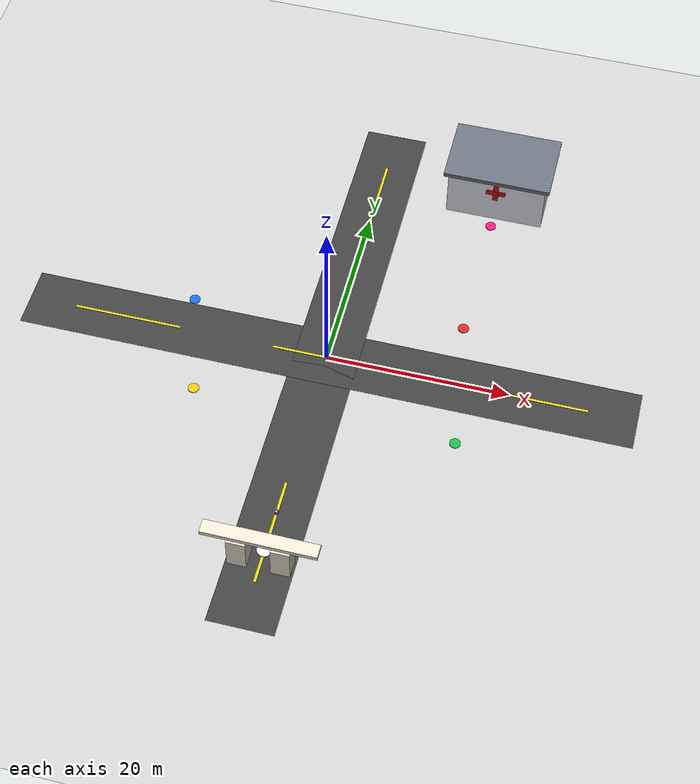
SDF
<sdf version="1.7">
 <world name="campus_world">
  <physics type="ode">
   <real_time_update_rate>1000</real_time_update_rate>
   <max_step_size>0.001</max_step_size>
   <real_time_factor>1</real_time_factor>
  </physics>
  <plugin name="gazebo_ros_state" filename="libgazebo_ros_state.so"/>
  <light name="sun" type="directional">
   <pose>0 0 10 0 -0 0</pose>
   <diffuse>0.8 0.8 0.8 1</diffuse>
   <specular>0.2 0.2 0.2 1</specular>
   <attenuation>
    <range>1000</range>
    <constant>0.9</constant>
    <linear>0.01</linear>
    <quadratic>0.001</quadratic>
   </attenuation>
   <direction>-0.5 0.1 -0.9</direction>
   <spot><inner_angle>0</inner_angle><outer_angle>0</outer_angle><falloff>0</falloff></spot>
  </light>
  <model name="ground_plane">
   <static>1</static>
   <link name="link">
    <collision name="collision">
     <geometry><plane><normal>0 0 1</normal><size>100 100</size></plane></geometry>
     <surface>
      <friction><ode><mu>0.5</mu><mu2>0.5</mu2></ode></friction>
      <contact><ode><kp>1e+06</kp><kd>100</kd></ode></contact>
     </surface>
    </collision>
    <visual name="visual">
     <cast_shadows>0</cast_shadows>
     <geometry><plane><normal>0 0 1</normal><size>100 100</size></plane></geometry>
     <material>
      <script><uri>file://media/materials/scripts/gazebo.material</uri><name>Gazebo/Grey</name></script>
     </material>
    </visual>
   </link>
  </model>
  <model name="road_ew">
   <static>1</static>
   <pose>0 0 0.002 0 -0 0</pose>
   <link name="link">
    <collision name="col">
     <geometry><box><size>67.5 7 0.004</size></box></geometry>
     <surface><friction><ode><mu>1</mu><mu2>1</mu2></ode></friction></surface>
    </collision>
    <visual name="vis">
     <geometry><box><size>67.5 7 0.004</size></box></geometry>
     <material><ambient>0.25 0.25 0.25 1</ambient><diffuse>0.25 0.25 0.25 1</diffuse></material>
    </visual>
   </link>
  </model>
  <model name="road_ns">
   <static>1</static>
   <pose>0 0 0.002 0 -0 0</pose>
   <link name="link">
    <collision name="col">
     <geometry><box><size>7 67.5 0.004</size></box></geometry>
     <surface><friction><ode><mu>1</mu><mu2>1</mu2></ode></friction></surface>
    </collision>
    <visual name="vis">
     <geometry><box><size>7 67.5 0.004</size></box></geometry>
     <material><ambient>0.25 0.25 0.25 1</ambient><diffuse>0.25 0.25 0.25 1</diffuse></material>
    </visual>
   </link>
  </model>
  <model name="dash_ew_1">
   <static>1</static>
   <pose>-22.5 0 0.02 0 -0 0</pose>
   <link name="link">
    <visual name="v">
     <geometry><box><size>12 0.3 0.01</size></box></geometry>
     <material><ambient>0.9 0.8 0.1 1</ambient></material>
    </visual>
   </link>
  </model>
  <model name="dash_ew_2">
   <static>1</static>
   <pose>0 0 0.02 0 -0 0</pose>
   <link name="link">
    <visual name="v">
     <geometry><box><size>12 0.3 0.01</size></box></geometry>
     <material><ambient>0.9 0.8 0.1 1</ambient></material>
    </visual>
   </link>
  </model>
  <model name="dash_ew_3">
   <static>1</static>
   <pose>22.5 0 0.02 0 -0 0</pose>
   <link name="link">
    <visual name="v">
     <geometry><box><size>12 0.3 0.01</size></box></geometry>
     <material><ambient>0.9 0.8 0.1 1</ambient></material>
    </visual>
   </link>
  </model>
  <model name="dash_ns_1">
   <static>1</static>
   <pose>0 -22.5 0.02 0 -0 1.5708</pose>
   <link name="link">
    <visual name="v">
     <geometry><box><size>12 0.3 0.01</size></box></geometry>
     <material><ambient>0.9 0.8 0.1 1</ambient></material>
    </visual>
   </link>
  </model>
  <model name="dash_ns_2">
   <static>1</static>
   <pose>0 22.5 0.02 0 -0 1.5708</pose>
   <link name="link">
    <visual name="v">
     <geometry><box><size>12 0.3 0.01</size></box></geometry>
     <material><ambient>0.9 0.8 0.1 1</ambient></material>
    </visual>
   </link>
  </model>
  <model name="medical_center">
   <static>1</static>
   <link name="link">
    <collision name="main">
     <pose>0 0 3 0 -0 0</pose>
     <geometry><box><size>11 7 6</size></box></geometry>
    </collision>
    <collision name="roof">
     <pose>0 0 6.25 0 -0 0</pose>
     <geometry><box><size>12 8 0.5</size></box></geometry>
    </collision>
    <visual name="visual_body">
     <pose>0 0 3 0 -0 0</pose>
     <geometry><box><size>11 7 6</size></box></geometry>
     <material>
      <ambient>0.92 0.93 0.95 1</ambient>
      <diffuse>0.92 0.93 0.95 1</diffuse>
      <specular>0.2 0.2 0.2 1</specular>
     </material>
    </visual>
    <visual name="visual_roof">
     <pose>0 0 6.25 0 -0 0</pose>
     <geometry><box><size>12 8 0.5</size></box></geometry>
     <material>
      <ambient>0.42 0.45 0.5 1</ambient>
      <diffuse>0.42 0.45 0.5 1</diffuse>
      <specular>0.1 0.1 0.1 1</specular>
     </material>
    </visual>
    <visual name="visual_cross_vertical">
     <pose>0 3.55 4.3 0 -0 0</pose>
     <geometry><box><size>0.6 0.15 2.2</size></box></geometry>
     <material>
      <ambient>0.82 0.08 0.1 1</ambient>
      <diffuse>0.82 0.08 0.1 1</diffuse>
      <specular>0.1 0.1 0.1 1</specular>
     </material>
    </visual>
    <visual name="visual_cross_horizontal">
     <pose>0 3.55 4.3 0 -0 0</pose>
     <geometry><box><size>2.2 0.15 0.6</size></box></geometry>
     <material>
      <ambient>0.82 0.08 0.1 1</ambient>
      <diffuse>0.82 0.08 0.1 1</diffuse>
      <specular>0.1 0.1 0.1 1</specular>
     </material>
    </visual>
   </link>
   <pose>13.5 27.5 0 0 0 -3.14159</pose>
  </model>
  <model name="gate_pillar_L">
   <static>1</static>
   <pose>-2.25 -26.1 2 0 -0 0</pose>
   <link name="link">
    <collision name="col"><geometry><box><size>2 2 4</size></box></geometry></collision>
    <visual name="vis">
     <geometry><box><size>2 2 4</size></box></geometry>
     <material><ambient>0.92 0.89 0.82 1</ambient><diffuse>0.92 0.89 0.82 1</diffuse></material>
    </visual>
   </link>
  </model>
  <model name="gate_pillar_R">
   <static>1</static>
   <pose>2.25 -26.1 2 0 -0 0</pose>
   <link name="link">
    <collision name="col"><geometry><box><size>2 2 4</size></box></geometry></collision>
    <visual name="vis">
     <geometry><box><size>2 2 4</size></box></geometry>
     <material><ambient>0.92 0.89 0.82 1</ambient><diffuse>0.92 0.89 0.82 1</diffuse></material>
    </visual>
   </link>
  </model>
  <model name="gate_arch">
   <static>1</static>
   <pose>0 -26.1 4.25 0 -0 0</pose>
   <link name="link">
    <collision name="col"><geometry><box><size>12 1.5 0.5</size></box></geometry></collision>
    <visual name="vis">
     <geometry><box><size>12 1.5 0.5</size></box></geometry>
     <material><ambient>0.92 0.89 0.82 1</ambient><diffuse>0.92 0.89 0.82 1</diffuse></material>
    </visual>
   </link>
  </model>
  <model name="wp_library">
   <static>1</static>
   <pose>-16.0594 4.08925 0.05 0 -0 0</pose>
   <link name="link">
    <visual name="v">
     <geometry><cylinder><radius>0.6</radius><length>0.1</length></cylinder></geometry>
     <material><ambient>0.1 0.4 0.9 1</ambient><diffuse>0.1 0.4 0.9 1</diffuse></material>
    </visual>
   </link>
  </model>
  <model name="wp_admin">
   <static>1</static>
   <pose>13.5 7.5 0.05 0 -0 0</pose>
   <link name="link">
    <visual name="v">
     <geometry><cylinder><radius>0.6</radius><length>0.1</length></cylinder></geometry>
     <material><ambient>0.85 0.15 0.15 1</ambient><diffuse>0.85 0.15 0.15 1</diffuse></material>
    </visual>
   </link>
  </model>
  <model name="wp_canteen">
   <static>1</static>
   <pose>-12.69 -7.5 0.05 0 -0 0</pose>
   <link name="link">
    <visual name="v">
     <geometry><cylinder><radius>0.6</radius><length>0.1</length></cylinder></geometry>
     <material><ambient>0.9 0.75 0.05 1</ambient><diffuse>0.9 0.75 0.05 1</diffuse></material>
    </visual>
   </link>
  </model>
  <model name="wp_hostel">
   <static>1</static>
   <pose>15.74 -7.5 0.05 0 -0 0</pose>
   <link name="link">
    <visual name="v">
     <geometry><cylinder><radius>0.6</radius><length>0.1</length></cylinder></geometry>
     <material><ambient>0.1 0.7 0.3 1</ambient><diffuse>0.1 0.7 0.3 1</diffuse></material>
    </visual>
   </link>
  </model>
  <model name="wp_medical">
   <static>1</static>
   <pose>13.5 22.7 0.05 0 -0 0</pose>
   <link name="link">
    <visual name="v">
     <geometry><cylinder><radius>0.6</radius><length>0.1</length></cylinder></geometry>
     <material><ambient>0.9 0.1 0.5 1</ambient><diffuse>0.9 0.1 0.5 1</diffuse></material>
    </visual>
   </link>
  </model>
  <model name="wp_gate">
   <static>1</static>
   <pose>0 -24.75 0.05 0 -0 0</pose>
   <link name="link">
    <visual name="v">
     <geometry><cylinder><radius>0.8</radius><length>0.1</length></cylinder></geometry>
     <material><ambient>1 1 1 1</ambient><diffuse>1 1 1 1</diffuse></material>
    </visual>
   </link>
  </model>
  <gravity>0 0 -9.8</gravity>
  <magnetic_field>6e-06 2.3e-05 -4.2e-05</magnetic_field>
  <atmosphere type="adiabatic"/>
  <scene><ambient>0.4 0.4 0.4 1</ambient><background>0.7 0.7 0.7 1</background><shadows>1</shadows></scene>
  <audio><device>default</device></audio>
  <spherical_coordinates>
   <surface_model>EARTH_WGS84</surface_model>
   <latitude_deg>0</latitude_deg>
   <longitude_deg>0</longitude_deg>
   <elevation>0</elevation>
   <heading_deg>0</heading_deg>
  </spherical_coordinates>
  <model name="campus_robot">
   <link name="base_link">
    <inertial>
     <pose>0.015787 -0 0.087938 0 -0 0</pose>
     <mass>22.55</mass>
     <inertia>
      <ixx>0.434777</ixx>
      <ixy>-2.44227e-19</ixy>
      <ixz>0.000920898</ixz>
      <iyy>1.49043</iyy>
      <iyz>-1.52548e-19</iyz>
      <izz>0.67733</izz>
     </inertia>
    </inertial>
    <collision name="base_link_collision">
     <pose>0 0 0.07 0 -0 0</pose>
     <geometry><box><size>0.45 0.25 0.1</size></box></geometry>
     <surface><friction><ode><mu>1</mu><mu2>1</mu2></ode></friction></surface>
    </collision>
    <collision name="base_link_fixed_joint_lump__battery_pack_collision_1">
     <pose>0.1 0 0.045 0 -0 0</pose>
     <geometry><box><size>0.18 0.28 0.05</size></box></geometry>
    </collision>
    <collision name="base_link_fixed_joint_lump__caster_front_left_collision_2">
     <pose>0.22 0.1 0.06 0 -0 0</pose>
     <geometry><sphere><radius>0.05</radius></sphere></geometry>
     <surface>
      <contact><ode><kp>1e+06</kp><kd>100</kd></ode></contact>
      <friction><ode><mu>0.01</mu><mu2>0.01</mu2></ode></friction>
     </surface>
    </collision>
    <collision name="base_link_fixed_joint_lump__caster_front_right_collision_3">
     <pose>0.22 -0.1 0.06 0 -0 0</pose>
     <geometry><sphere><radius>0.05</radius></sphere></geometry>
     <surface>
      <contact><ode><kp>1e+06</kp><kd>100</kd></ode></contact>
      <friction><ode><mu>0.01</mu><mu2>0.01</mu2></ode></friction>
     </surface>
    </collision>
    <collision name="base_link_fixed_joint_lump__caster_wheel_left_collision_4">
     <pose>-0.2 0.1 0.06 0 -0 0</pose>
     <geometry><sphere><radius>0.05</radius></sphere></geometry>
     <surface>
      <contact><ode><kp>1e+06</kp><kd>100</kd></ode></contact>
      <friction><ode><mu>0.01</mu><mu2>0.01</mu2></ode></friction>
     </surface>
    </collision>
    <collision name="base_link_fixed_joint_lump__caster_wheel_right_collision_5">
     <pose>-0.2 -0.1 0.06 0 -0 0</pose>
     <geometry><sphere><radius>0.05</radius></sphere></geometry>
     <surface>
      <contact><ode><kp>1e+06</kp><kd>100</kd></ode></contact>
      <friction><ode><mu>0.01</mu><mu2>0.01</mu2></ode></friction>
     </surface>
    </collision>
    <collision name="base_link_fixed_joint_lump__lidar_post_fl_collision_6">
     <pose>0.2 0.07 0.225 0 -0 0</pose>
     <geometry><box><size>0.015 0.015 0.33</size></box></geometry>
    </collision>
    <collision name="base_link_fixed_joint_lump__lidar_post_fr_collision_7">
     <pose>0.2 -0.07 0.225 0 -0 0</pose>
     <geometry><box><size>0.015 0.015 0.33</size></box></geometry>
    </collision>
    <collision name="base_link_fixed_joint_lump__lidar_post_rl_collision_8">
     <pose>-0.17 0.07 0.225 0 -0 0</pose>
     <geometry><box><size>0.015 0.015 0.33</size></box></geometry>
    </collision>
    <collision name="base_link_fixed_joint_lump__lidar_post_rr_collision_9">
     <pose>-0.17 -0.07 0.225 0 -0 0</pose>
     <geometry><box><size>0.015 0.015 0.33</size></box></geometry>
    </collision>
    <collision name="base_link_fixed_joint_lump__lidar_top_plate_collision_10">
     <pose>0.14 0 0.395 0 -0 0</pose>
     <geometry><box><size>0.16 0.16 0.01</size></box></geometry>
    </collision>
    <collision name="base_link_fixed_joint_lump__parcel_box_collision_11">
     <pose>0 0 0.3 0 -0 0</pose>
     <geometry><box><size>0.3 0.25 0.12</size></box></geometry>
    </collision>
    <collision name="base_link_fixed_joint_lump__rear_support_rod_collision_12">
     <pose>-0.14 0 0.19 0 -0 0</pose>
     <geometry><box><size>0.05 0.05 0.14</size></box></geometry>
    </collision>
    <collision name="base_link_fixed_joint_lump__sensor_tower_collision_13">
     <pose>0.14 0 0.19 0 -0 0</pose>
     <geometry><box><size>0.05 0.05 0.14</size></box></geometry>
    </collision>
    <collision name="base_link_fixed_joint_lump__lidar_link_collision_14">
     <pose>0.14 0 0.42 0 -0.035 0</pose>
     <geometry><box><size>0.001 0.001 0.001</size></box></geometry>
    </collision>
    <visual name="base_link_visual">
     <pose>0 0 0.06 0 -0 0</pose>
     <geometry><box><size>0.45 0.35 0.12</size></box></geometry>
     <material>
      <script><name>Gazebo/Blue</name><uri>file://media/materials/scripts/gazebo.material</uri></script>
     </material>
    </visual>
    <visual name="base_link_fixed_joint_lump__battery_pack_visual_1">
     <pose>0.1 0 0.045 0 -0 0</pose>
     <geometry><box><size>0.18 0.28 0.05</size></box></geometry>
    </visual>
    <visual name="base_link_fixed_joint_lump__caster_front_left_visual_2">
     <pose>0.22 0.1 0.06 0 -0 0</pose>
     <geometry><sphere><radius>0.05</radius></sphere></geometry>
     <material>
      <script><name>Gazebo/Grey</name><uri>file://media/materials/scripts/gazebo.material</uri></script>
     </material>
    </visual>
    <visual name="base_link_fixed_joint_lump__caster_front_right_visual_3">
     <pose>0.22 -0.1 0.06 0 -0 0</pose>
     <geometry><sphere><radius>0.05</radius></sphere></geometry>
     <material>
      <script><name>Gazebo/Grey</name><uri>file://media/materials/scripts/gazebo.material</uri></script>
     </material>
    </visual>
    <visual name="base_link_fixed_joint_lump__caster_wheel_left_visual_4">
     <pose>-0.2 0.1 0.06 0 -0 0</pose>
     <geometry><sphere><radius>0.05</radius></sphere></geometry>
     <material>
      <script><name>Gazebo/Grey</name><uri>file://media/materials/scripts/gazebo.material</uri></script>
     </material>
    </visual>
    <visual name="base_link_fixed_joint_lump__caster_wheel_right_visual_5">
     <pose>-0.2 -0.1 0.06 0 -0 0</pose>
     <geometry><sphere><radius>0.05</radius></sphere></geometry>
     <material>
      <script><name>Gazebo/Grey</name><uri>file://media/materials/scripts/gazebo.material</uri></script>
     </material>
    </visual>
    <visual name="base_link_fixed_joint_lump__imu_link_visual_6">
     <pose>0 0 0.09 0 -0 0</pose>
     <geometry><box><size>0.02 0.02 0.01</size></box></geometry>
    </visual>
    <visual name="base_link_fixed_joint_lump__lidar_post_fl_visual_7">
     <pose>0.2 0.07 0.225 0 -0 0</pose>
     <geometry><box><size>0.015 0.015 0.33</size></box></geometry>
    </visual>
    <visual name="base_link_fixed_joint_lump__lidar_post_fr_visual_8">
     <pose>0.2 -0.07 0.225 0 -0 0</pose>
     <geometry><box><size>0.015 0.015 0.33</size></box></geometry>
    </visual>
    <visual name="base_link_fixed_joint_lump__lidar_post_rl_visual_9">
     <pose>-0.17 0.07 0.225 0 -0 0</pose>
     <geometry><box><size>0.015 0.015 0.33</size></box></geometry>
    </visual>
    <visual name="base_link_fixed_joint_lump__lidar_post_rr_visual_10">
     <pose>-0.17 -0.07 0.225 0 -0 0</pose>
     <geometry><box><size>0.015 0.015 0.33</size></box></geometry>
    </visual>
    <visual name="base_link_fixed_joint_lump__lidar_top_plate_visual_11">
     <pose>0.14 0 0.395 0 -0 0</pose>
     <geometry><box><size>0.16 0.16 0.01</size></box></geometry>
    </visual>
    <visual name="base_link_fixed_joint_lump__parcel_box_visual_12">
     <pose>0 0 0.3 0 -0 0</pose>
     <geometry><box><size>0.3 0.25 0.12</size></box></geometry>
    </visual>
    <visual name="base_link_fixed_joint_lump__rear_support_rod_visual_13">
     <pose>-0.14 0 0.19 0 -0 0</pose>
     <geometry><box><size>0.05 0.05 0.14</size></box></geometry>
    </visual>
    <visual name="base_link_fixed_joint_lump__sensor_tower_visual_14">
     <pose>0.14 0 0.19 0 -0 0</pose>
     <geometry><box><size>0.05 0.05 0.14</size></box></geometry>
    </visual>
    <visual name="base_link_fixed_joint_lump__camera_mount_visual_15">
     <pose>0.18 0 0.15 0 -0 0</pose>
     <geometry><box><size>0.03 0.03 0.05</size></box></geometry>
    </visual>
    <visual name="base_link_fixed_joint_lump__camera_link_visual_16">
     <pose>0.22 0 0.15 0 -0.25 0</pose>
     <geometry><box><size>0.05 0.04 0.04</size></box></geometry>
    </visual>
    <visual name="base_link_fixed_joint_lump__lidar_base_link_visual_17">
     <pose>0.14 0 0.39 0 -0 0</pose>
     <geometry><cylinder><length>0.02</length><radius>0.045</radius></cylinder></geometry>
    </visual>
    <visual name="base_link_fixed_joint_lump__lidar_link_visual_18">
     <pose>0.14 0 0.42 0 -0.035 0</pose>
     <geometry><cylinder><length>0.04</length><radius>0.04</radius></cylinder></geometry>
    </visual>
    <sensor name="imu_sensor" type="imu">
     <always_on>1</always_on>
     <update_rate>100</update_rate>
     <visualize>0</visualize>
     <plugin name="imu_plugin" filename="libgazebo_ros_imu_sensor.so">
      <ros><remapping>~/out:=imu</remapping></ros>
      <frame_name>imu_link</frame_name>
     </plugin>
     <pose>0 0 0.09 0 -0 0</pose>
    </sensor>
    <sensor name="camera_sensor" type="depth">
     <always_on>1</always_on>
     <update_rate>30</update_rate>
     <visualize>1</visualize>
     <camera>
      <horizontal_fov>1.396</horizontal_fov>
      <image><width>640</width><height>480</height><format>R8G8B8</format></image>
      <clip><near>0.05</near><far>50</far></clip>
      <depth_camera><clip><near>0.1</near><far>10</far></clip><output>depths</output></depth_camera>
     </camera>
     <plugin name="camera_plugin" filename="libgazebo_ros_camera.so">
      <camera_name>camera_link</camera_name>
      <frame_name>camera_link_optical</frame_name>
      <min_depth>0.1</min_depth>
      <max_depth>10.0</max_depth>
     </plugin>
     <pose>0.22 0 0.15 0 -0.25 0</pose>
    </sensor>
    <sensor name="lidar" type="ray">
     <always_on>1</always_on>
     <update_rate>15</update_rate>
     <visualize>1</visualize>
     <ray>
      <scan>
       <horizontal>
        <samples>1080</samples>
        <resolution>1</resolution>
        <min_angle>-3.14159</min_angle>
        <max_angle>3.14159</max_angle>
       </horizontal>
       <vertical><samples>1</samples><min_angle>0</min_angle><max_angle>0</max_angle></vertical>
      </scan>
      <range><min>0.25</min><max>20</max><resolution>0.005</resolution></range>
      <noise><type>gaussian</type><mean>0</mean><stddev>0.01</stddev></noise>
     </ray>
     <plugin name="lidar_plugin" filename="libgazebo_ros_ray_sensor.so">
      <ros><remapping>~/out:=scan</remapping></ros>
      <output_type>sensor_msgs/LaserScan</output_type>
      <frame_name>lidar_link</frame_name>
     </plugin>
     <pose>0.14 0 0.42 0 -0.035 0</pose>
    </sensor>
   </link>
   <joint name="left_wheel_joint" type="revolute">
    <pose relative_to="base_link">0 0.195 0.075 0 -0 0</pose>
    <parent>base_link</parent>
    <child>left_wheel</child>
    <axis>
     <xyz>0 1 0</xyz>
     <limit><lower>-1e+16</lower><upper>1e+16</upper></limit>
     <dynamics><spring_reference>0</spring_reference><spring_stiffness>0</spring_stiffness></dynamics>
    </axis>
   </joint>
   <link name="left_wheel">
    <pose relative_to="left_wheel_joint">0 0 0 0 -0 0</pose>
    <inertial>
     <mass>0.5</mass>
     <inertia><ixx>0.001</ixx><ixy>0</ixy><ixz>0</ixz><iyy>0.001</iyy><iyz>0</iyz><izz>0.001</izz></inertia>
    </inertial>
    <collision name="left_wheel_collision">
     <pose>0 0 0 1.5708 -0 0</pose>
     <geometry><cylinder><length>0.04</length><radius>0.07</radius></cylinder></geometry>
     <surface>
      <contact><ode><kp>1e+06</kp><kd>100</kd></ode></contact>
      <friction><ode><mu>20</mu><mu2>20</mu2></ode></friction>
     </surface>
    </collision>
    <visual name="left_wheel_visual">
     <pose>0 0 0 1.5708 -0 0</pose>
     <geometry><cylinder><length>0.04</length><radius>0.07</radius></cylinder></geometry>
    </visual>
   </link>
   <joint name="right_wheel_joint" type="revolute">
    <pose relative_to="base_link">0 -0.195 0.075 0 -0 0</pose>
    <parent>base_link</parent>
    <child>right_wheel</child>
    <axis>
     <xyz>0 1 0</xyz>
     <limit><lower>-1e+16</lower><upper>1e+16</upper></limit>
     <dynamics><spring_reference>0</spring_reference><spring_stiffness>0</spring_stiffness></dynamics>
    </axis>
   </joint>
   <link name="right_wheel">
    <pose relative_to="right_wheel_joint">0 0 0 0 -0 0</pose>
    <inertial>
     <mass>0.5</mass>
     <inertia><ixx>0.001</ixx><ixy>0</ixy><ixz>0</ixz><iyy>0.001</iyy><iyz>0</iyz><izz>0.001</izz></inertia>
    </inertial>
    <collision name="right_wheel_collision">
     <pose>0 0 0 1.5708 -0 0</pose>
     <geometry><cylinder><length>0.04</length><radius>0.07</radius></cylinder></geometry>
     <surface>
      <contact><ode><kp>1e+06</kp><kd>100</kd></ode></contact>
      <friction><ode><mu>20</mu><mu2>20</mu2></ode></friction>
     </surface>
    </collision>
    <visual name="right_wheel_visual">
     <pose>0 0 0 1.5708 -0 0</pose>
     <geometry><cylinder><length>0.04</length><radius>0.07</radius></cylinder></geometry>
    </visual>
   </link>
   <static>0</static>
   <plugin name="diff_drive_controller" filename="libgazebo_ros_diff_drive.so">
    <ros><namespace>/</namespace></ros>
    <update_rate>100</update_rate>
    <left_joint>left_wheel_joint</left_joint>
    <right_joint>right_wheel_joint</right_joint>
    <wheel_separation>0.39</wheel_separation>
    <wheel_diameter>0.14</wheel_diameter>
    <max_wheel_torque>20</max_wheel_torque>
    <max_wheel_acceleration>0.4</max_wheel_acceleration>
    <command_topic>cmd_vel</command_topic>
    <odometry_topic>odom</odometry_topic>
    <odometry_frame>odom</odometry_frame>
    <robot_base_frame>base_link</robot_base_frame>
    <publish_odom>1</publish_odom>
    <publish_odom_tf>1</publish_odom_tf>
    <publish_wheel_tf>0</publish_wheel_tf>
    <publish_wheel_joint_state>0</publish_wheel_joint_state>
    <legacy_mode>0</legacy_mode>
   </plugin>
   <pose>-4e-05 -20.2954 -0.001257 0 0.021388 1.56916</pose>
  </model>
 </world>
</sdf>
